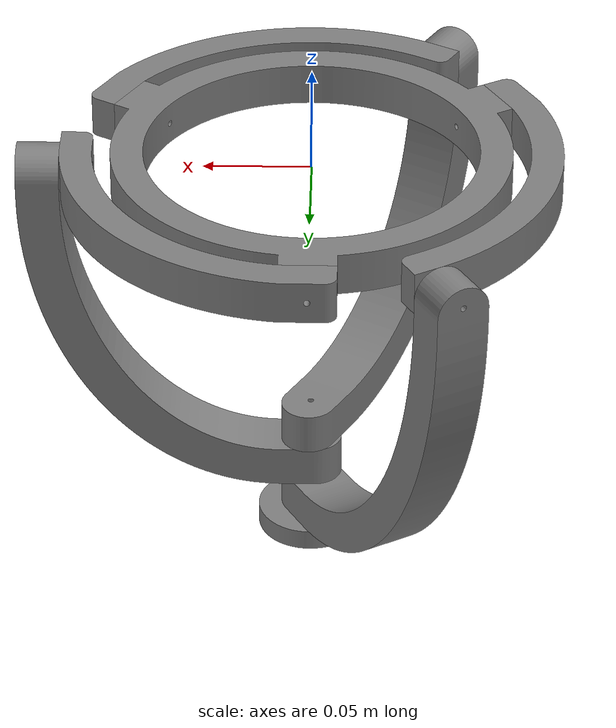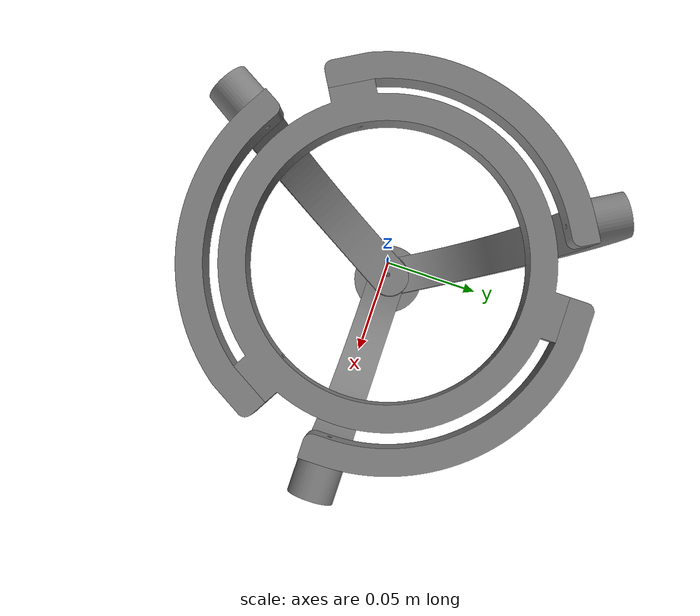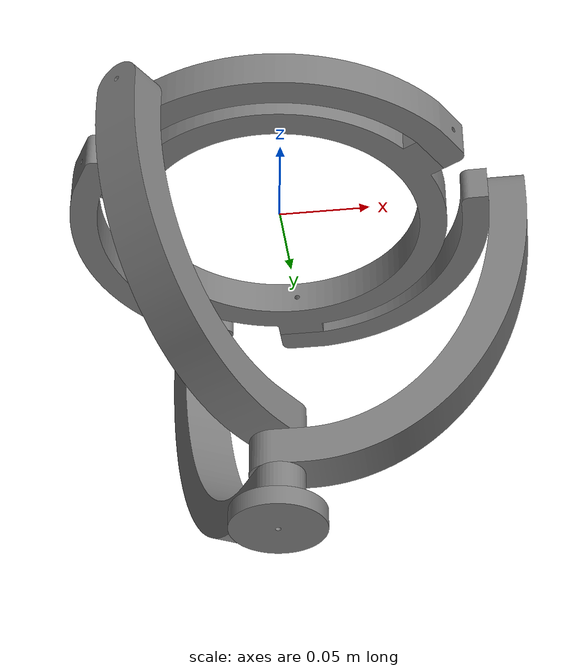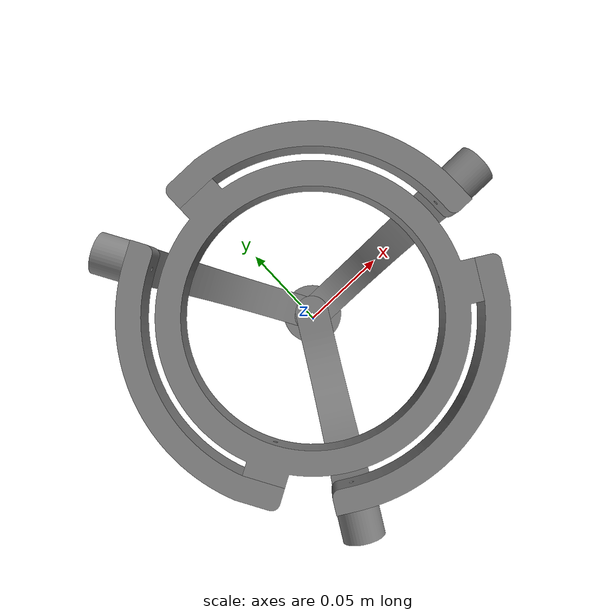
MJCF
<mujoco model="parallel_manipulator_v2">
  <compiler angle="radian"/>
  <asset>
    <mesh name="base_link" file="base_link.stl" scale="0.001 0.001 0.001"/>
    <mesh name="link21" file="link21.stl" scale="0.001 0.001 0.001"/>
    <mesh name="link11" file="link11.stl" scale="0.001 0.001 0.001"/>
    <mesh name="link51" file="link51.stl" scale="0.001 0.001 0.001"/>
    <mesh name="link41" file="link41.stl" scale="0.001 0.001 0.001"/>
    <mesh name="link61" file="link61.stl" scale="0.001 0.001 0.001"/>
    <mesh name="ring1" file="ring1.stl" scale="0.001 0.001 0.001"/>
    <mesh name="link31" file="link31.stl" scale="0.001 0.001 0.001"/>
  </asset>
  <worldbody>
    <geom type="mesh" mesh="base_link"/>
    <geom type="mesh" mesh="link61"/>
    <body name="link21" pos="-0.057865 0.100227 0">

      <inertial pos="-0.0332425 -0.0758002 0" quat="0.560502 0.431089 -0.560502 0.431089" mass="0.45548" diaginertia="0.0013062 0.00124399 9.26802e-05"/>
      <joint name="Revolute_3" pos="0 0 0" axis="0.5 -0.866025 0" limited="false"/>
      <geom pos="0.057865 -0.100227 0" type="mesh" mesh="link21"/>
    </body>
    <body name="link51" pos="2e-06 0 -0.17">

      <inertial pos="0.0821572 -4.36559e-07 0.0695224" quat="0.669409 0.227797 0.227797 0.669409" mass="1.01501" diaginertia="0.00476656 0.00452455 0.000354263"/>
      <joint name="Revolute_8" pos="0 0 0" axis="0 0 -1" limited="false"/>
      <geom pos="-2e-06 0 0.17" type="mesh" mesh="link51"/>
        <body name="link11" pos="0.115732 0 0.17">

        <inertial pos="-0.0490241 0.0666887 0" quat="0.269865 0.653585 -0.269865 0.653585" mass="0.45548" diaginertia="0.0013062 0.00124399 9.26802e-05"/>
        <joint name="Revolute_4" pos="0 0 0" axis="-1 0 0" limited="false"/>
        <geom pos="-0.115734 0 0" type="mesh" mesh="link11"/>
        <body name="ring1" pos="-0.115734 0.1 0">
          <inertial pos="2.52047e-07 -0.1 0" quat="0.5 0.5 -0.5 0.5" mass="1.34958" diaginertia="0.0100169 0.00505355 0.00505355"/>
          <joint name="Revolute_12" pos="0 0 0" axis="0 1 0" limited="false"/>
          <geom pos="0 -0.1 0" type="mesh" mesh="ring1"/>
          <body name="link31" pos="0.086603 -0.15 0">

            <inertial pos="-0.062203 -0.0411173 0" quat="-0.0930828 0.700953 0.0930828 0.700953" mass="0.45548" diaginertia="0.0013062 0.00124399 9.26802e-05"/>
            <joint name="Revolute_13" pos="0 0 0" axis="-0.866025 0.5 0" limited="false"/>
            <geom pos="-0.086603 0.05 0" type="mesh" mesh="link31"/>
          </body>
        </body>
      </body>
      <body name="link41" pos="0 0 0.02">
        <inertial pos="-0.0401744 -0.0695839 0.0600855" quat="0.901024 0.348094 -0.0932714 -0.241429" mass="0.950891" diaginertia="0.00387306 0.00366571 0.000312379"/>
        <joint name="Revolute_9" pos="0 0 0" axis="0 0 -1" limited="false"/>
        <geom pos="-2e-06 0 0.15" type="mesh" mesh="link41"/>
      </body>
    </body>
  </worldbody>
<!--  The best for now-->
  <equality>
    <connect name="kinematic_link2" active="true" body1="link21" body2="ring1" anchor="0 0 0" />
    <connect name="kinematic_link3" active="true" body1="link11" body2="ring1" anchor="0 0 0" />
    <connect name="kinematic_link1" active="true" body1="link41" body2="link31" anchor="0 0 0" />

  </equality>
</mujoco>
